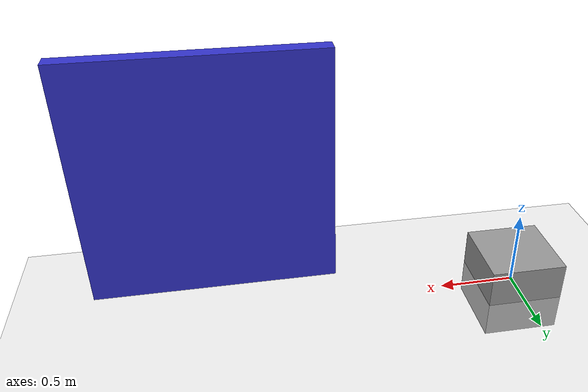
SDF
<?xml version="1.0" ?>
<sdf version="1.6">
  <world name="amr_lab">
    <include>
      <uri>model://ground_plane</uri>
    </include>
    <include>
      <uri>model://sun</uri>
    </include>

    <!-- A simple box "stand" with a camera on it -->
    <model name="camera_stand">
      <static>true</static>
      <pose>0 0 0 0 0 0</pose>
      <link name="base">
        <inertial><mass>1.0</mass></inertial>
        <collision name="collision">
          <geometry><box><size>0.5 0.5 0.5</size></box></geometry>
        </collision>
        <visual name="visual">
          <geometry><box><size>0.5 0.5 0.5</size></box></geometry>
          <material><ambient>0.6 0.6 0.6 1</ambient></material>
        </visual>
      </link>

      <link name="camera_link">
        <pose>0 0 1.2 0 0 0</pose>
        <sensor name="rgb_camera" type="camera">
          <always_on>true</always_on>
          <update_rate>30</update_rate>
          <camera>
            <horizontal_fov>1.3962634</horizontal_fov>
            <image>
              <width>640</width>
              <height>480</height>
              <format>R8G8B8</format>
            </image>
            <clip>
              <near>0.05</near>
              <far>50.0</far>
            </clip>
          </camera>
          <plugin name="gazebo_ros_camera" filename="libgazebo_ros_camera.so">
            <ros>
              <namespace>/</namespace>
            </ros>
            <frame_name>camera_optical_frame</frame_name>
            <camera_name>camera</camera_name>
            <image_topic_name>image_raw</image_topic_name>
            <camera_info_topic_name>camera_info</camera_info_topic_name>
          </plugin>
        </sensor>
      </link>
    </model>

    <!-- Some visual targets in front of the camera -->
    <model name="panel">
      <static>true</static>
      <pose>2 0 1 0 0 0</pose>
      <link name="panel_link">
        <visual name="panel_visual">
          <geometry><box><size>1.5 0.1 1.5</size></box></geometry>
          <material><ambient>0.2 0.2 0.8 1</ambient></material>
        </visual>
      </link>
    </model>
  </world>
</sdf>
